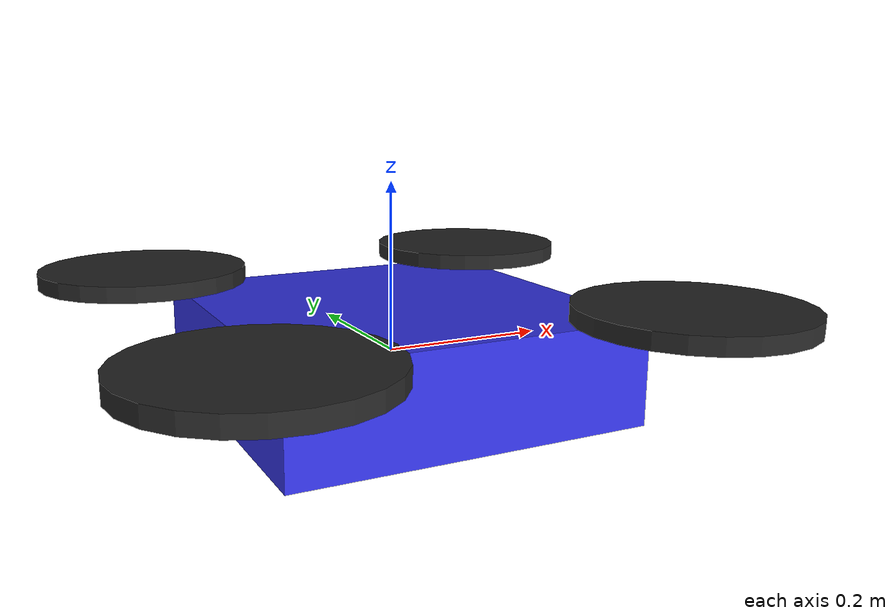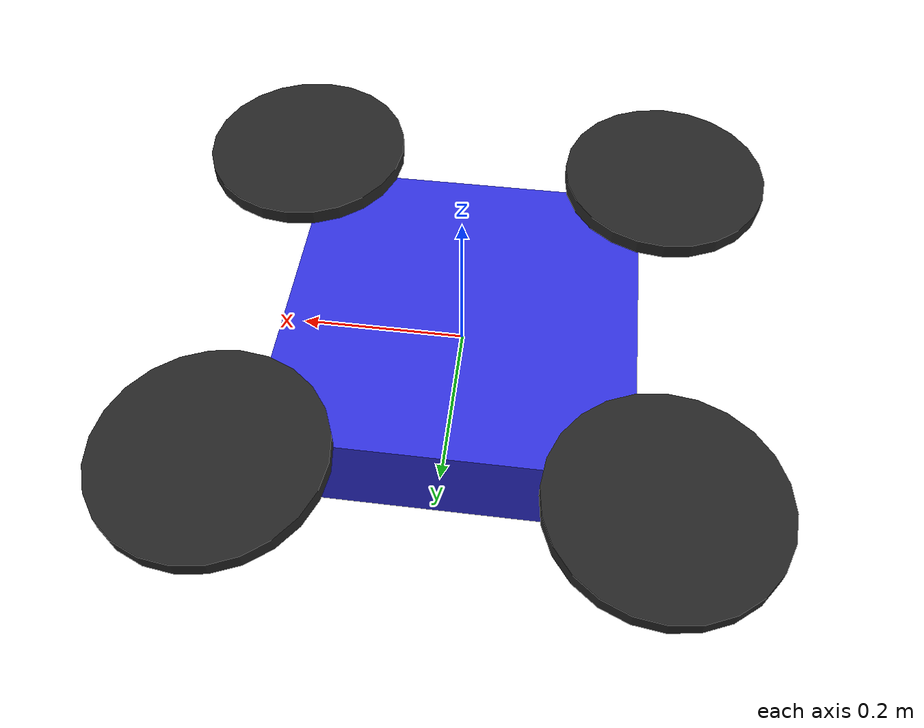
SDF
<?xml version="1.0" ?>
<sdf version="1.6">
  <model name="quadrotor">

    <link name="base_link">

      <inertial>
        <mass>1.0</mass>
        <inertia>
          <ixx>0.005</ixx>
          <ixy>0</ixy>
          <ixz>0</ixz>
          <iyy>0.005</iyy>
          <iyz>0</iyz>
          <izz>0.009</izz>
        </inertia>
      </inertial>

      <collision name="body_collision">
        <geometry>
          <box><size>0.42 0.42 0.12</size></box>
        </geometry>
      </collision>

      <visual name="body_visual">
        <geometry>
          <box><size>0.42 0.42 0.12</size></box>
        </geometry>
        <material>
          <ambient>0.15 0.15 0.75 1</ambient>
          <diffuse>0.2 0.2 0.9 1</diffuse>
        </material>
      </visual>

      <visual name="rotor_1_visual">
        <pose>0.24 0.24 0.07 0 0 0</pose>
        <geometry>
          <cylinder><radius>0.13</radius><length>0.02</length></cylinder>
        </geometry>
        <material>
          <ambient>0.1 0.1 0.1 1</ambient>
          <diffuse>0.15 0.15 0.15 1</diffuse>
        </material>
      </visual>

      <visual name="rotor_2_visual">
        <pose>0.24 -0.24 0.07 0 0 0</pose>
        <geometry>
          <cylinder><radius>0.13</radius><length>0.02</length></cylinder>
        </geometry>
        <material>
          <ambient>0.1 0.1 0.1 1</ambient>
          <diffuse>0.15 0.15 0.15 1</diffuse>
        </material>
      </visual>

      <visual name="rotor_3_visual">
        <pose>-0.24 0.24 0.07 0 0 0</pose>
        <geometry>
          <cylinder><radius>0.13</radius><length>0.02</length></cylinder>
        </geometry>
        <material>
          <ambient>0.1 0.1 0.1 1</ambient>
          <diffuse>0.15 0.15 0.15 1</diffuse>
        </material>
      </visual>

      <visual name="rotor_4_visual">
        <pose>-0.24 -0.24 0.07 0 0 0</pose>
        <geometry>
          <cylinder><radius>0.13</radius><length>0.02</length></cylinder>
        </geometry>
        <material>
          <ambient>0.1 0.1 0.1 1</ambient>
          <diffuse>0.15 0.15 0.15 1</diffuse>
        </material>
      </visual>

      <!-- 3D 激光雷达：水平 360 度、垂直 8 线 -->
      <sensor type="ray" name="lidar3d">
        <pose>0 0 0.06 0 0 0</pose>
        <visualize>false</visualize>
        <update_rate>10</update_rate>
        <ray>
          <scan>
            <horizontal>
              <samples>360</samples>
              <resolution>1</resolution>
              <min_angle>-3.141593</min_angle>
              <max_angle>3.141593</max_angle>
            </horizontal>
            <vertical>
              <samples>8</samples>
              <resolution>1</resolution>
              <min_angle>-0.35</min_angle>
              <max_angle>0.35</max_angle>
            </vertical>
          </scan>
          <range>
            <min>0.3</min>
            <max>20.0</max>
            <resolution>0.01</resolution>
          </range>
        </ray>
        <plugin name="gazebo_ros_block_laser" filename="libgazebo_ros_block_laser.so">
          <topicName>/cloud_in</topicName>
          <frameName>base_link</frameName>
          <radiation>laser</radiation>
          <gaussianNoise>0.005</gaussianNoise>
        </plugin>
      </sensor>

    </link>

    <!-- 位姿与速度反馈：里程计 + TF（world -> base_link） -->
    <plugin name="ground_truth_odom" filename="libgazebo_ros_p3d.so">
      <bodyName>base_link</bodyName>
      <topicName>/ground_truth/odom</topicName>
      <frameName>world</frameName>
      <updateRate>50.0</updateRate>
    </plugin>

    <!-- 外力输入：控制器通过该话题对机体施加力 -->
    <plugin name="force_input" filename="libgazebo_ros_force.so">
      <bodyName>base_link</bodyName>
      <topicName>/quadrotor/wrench</topicName>
    </plugin>

  </model>
</sdf>
